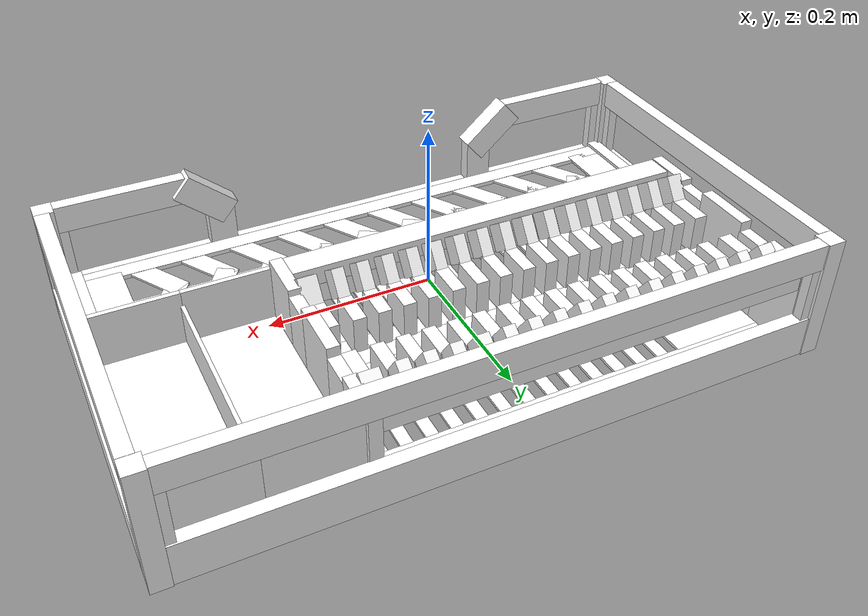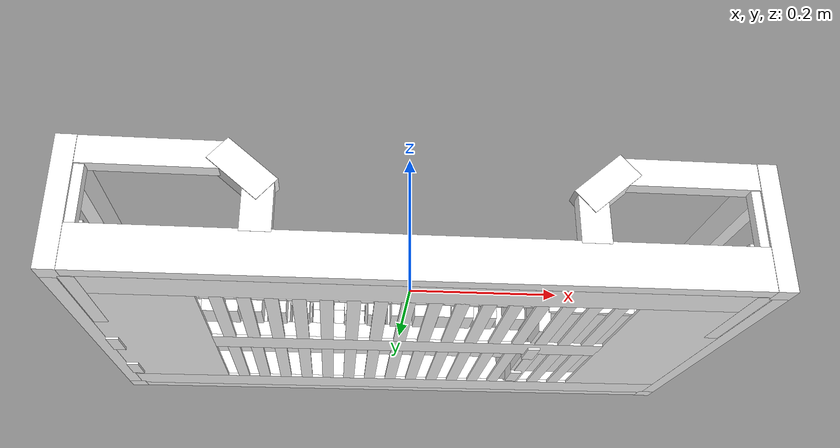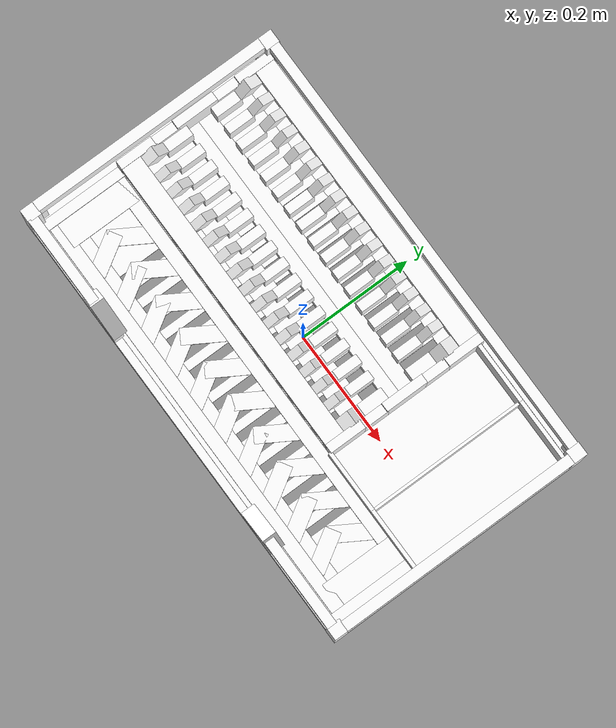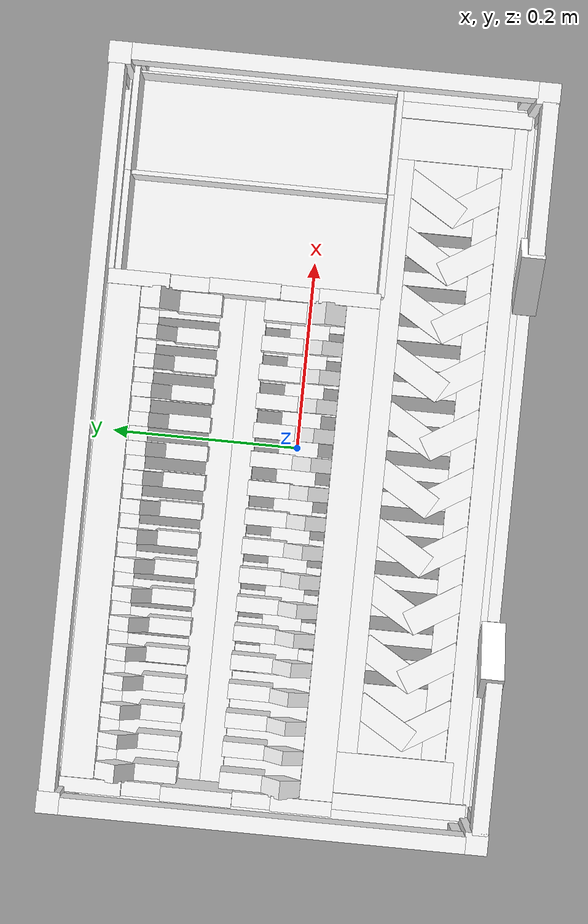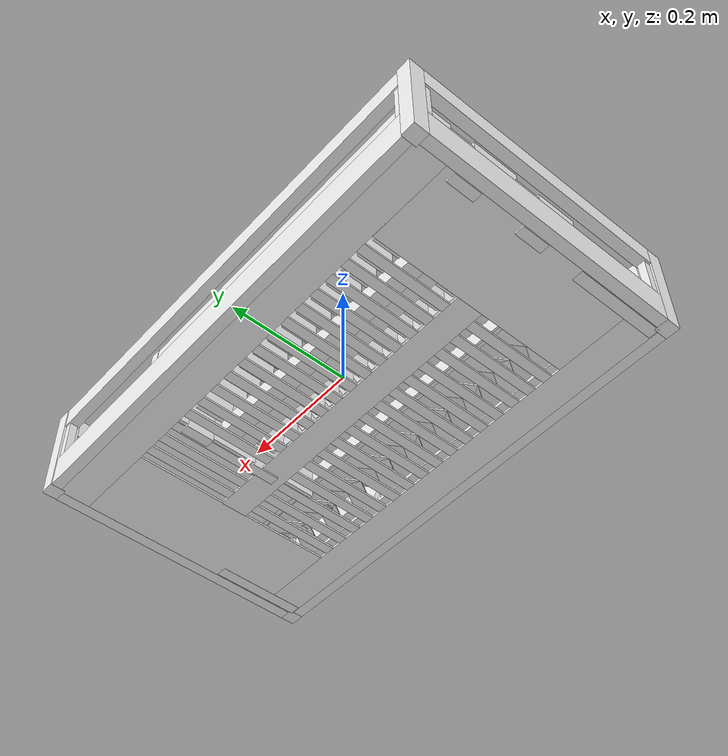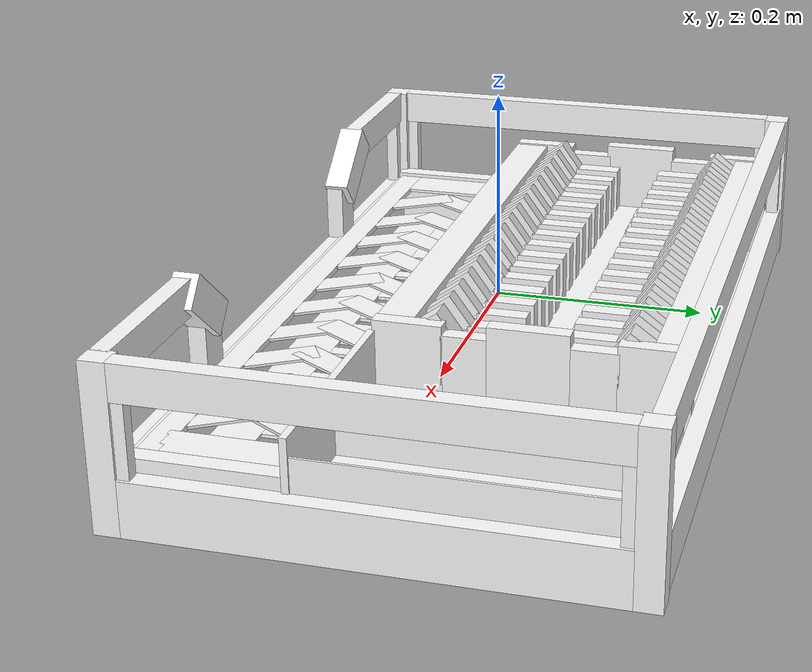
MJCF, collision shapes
<?xml version='1.0' encoding='utf-8'?>
<mujoco model="model">
  <option timestep="0.002" gravity="0.0 0.0 -9.81" />
  <compiler angle="radian" />
  <asset>
    <mesh file="visual/DishRack046.obj" name="DishRack046_vis" />
    <texture file="visual/T_BC001.png" name="DishRack046_material" type="2d" />
    <material name="DishRack046_material" rgba="1 1 1 1.0" texture="DishRack046_material" shininess="0.4472135901451111" specular="0.3103448502657381" />
  </asset>
  <default>
    <default class="visual">
      <geom conaffinity="0" contype="0" group="1" type="mesh" />
    </default>
    <default class="collision">
      <geom group="0" rgba="1 1 1 0.25" density="1.0" solref="0.004 1" solimp="0.998 0.998 0.001" />
    </default>
    <default class="spawn">
      <geom group="0" rgba="1 1 1 0.5" contype="0" conaffinity="0" />
      <site group="0" rgba="1 1 1 0.5" />
    </default>
    <default class="region">
      <geom group="1" conaffinity="0" contype="0" rgba="0 1 0 0" mass="0" />
    </default>
  </default>
  <worldbody>
    <body>
      <body name="object">
        <geom mesh="DishRack046_vis" type="mesh" solimp="0.998 0.998 0.001" solref="0.001 1" friction="0.95 0.3 0.1" class="visual" material="DishRack046_material" />
        <geom type="box" pos="0.39766744 -0.00132023 -0.05192924" size="0.00913156010210514 0.21430644392967224 0.026510488241910934" quat="1.0 0.0 0.0 0.0" class="collision" />
        <geom type="box" pos="0.39509019 0.22486576 0.00086046" size="0.011708796955645084 0.012272845953702927 0.07930018752813339" quat="1.0 0.0 0.0 0.0" class="collision" />
        <geom type="box" pos="0.39764181 0.20716241 0.01032044" size="0.006281320005655289 0.005727356765419245 0.03601858764886856" quat="1.0 0.0 0.0 0.0" class="collision" />
        <geom type="box" pos="0.37779069 0.22716862 0.01032044" size="0.005680048372596502 0.0062696742825210094 0.03601858764886856" quat="1.0 0.0 0.0 0.0" class="collision" />
        <geom type="box" pos="0.39766744 -0.00132023 0.06298769" size="0.00913156010210514 0.21430644392967224 0.01736580766737461" quat="1.0 0.0 0.0 0.0" class="collision" />
        <geom type="box" pos="0.38858098 0.06805242 -0.02095379" size="0.0011926671722903848 0.13945630192756653 0.027811428532004356" quat="1.0 0.0 0.0 0.0" class="collision" />
        <geom type="box" pos="0.16413960 -0.04037047 -0.02097550" size="0.007958175614476204 0.032889191061258316 0.055858682841062546" quat="1.0 0.0 0.0 0.0" class="collision" />
        <geom type="box" pos="0.27962047 0.06805242 -0.02095379" size="0.002443235367536545 0.13945630192756653 0.027811428532004356" quat="1.0 0.0 0.0 0.0" class="collision" />
        <geom type="box" pos="0.37779069 -0.22967133 0.01032044" size="0.005680048372596502 0.0062696742825210094 0.03601858764886856" quat="1.0 0.0 0.0 0.0" class="collision" />
        <geom type="box" pos="0.39764181 -0.20909162 0.01032044" size="0.006281320005655289 0.005727356765419245 0.03601858764886856" quat="1.0 0.0 0.0 0.0" class="collision" />
        <geom type="box" pos="0.39509019 -0.22679498 0.00086046" size="0.011708796955645084 0.012272845953702927 0.07930018752813339" quat="1.0 0.0 0.0 0.0" class="collision" />
        <geom type="box" pos="0.00006485 0.22712360 0.06299322" size="0.3836459517478943 0.008559223264455795 0.01716744154691696" quat="1.0 0.0 0.0 0.0" class="collision" />
        <geom type="box" pos="0.00006486 0.22712360 -0.05162422" size="0.3836459517478943 0.008559223264455795 0.026698756963014603" quat="1.0 0.0 0.0 0.0" class="collision" />
        <geom type="box" pos="0.33551171 0.20992469 -0.01153611" size="0.05589539557695389 0.003372995415702462 0.036185372620821" quat="1.0 0.0 0.0 0.0" class="collision" />
        <geom type="box" pos="0.22474378 0.20992469 -0.01153611" size="0.05500926077365875 0.003372995415702462 0.036185372620821" quat="1.0 0.0 0.0 0.0" class="collision" />
        <geom type="box" pos="0.22474378 -0.07376248 -0.01326757" size="0.05500926077365875 0.003372995415702462 0.03791683912277222" quat="1.0 0.0 0.0 0.0" class="collision" />
        <geom type="box" pos="0.33551171 -0.07376248 -0.01326757" size="0.05589539557695389 0.003372995415702462 0.03791683912277222" quat="1.0 0.0 0.0 0.0" class="collision" />
        <geom type="box" pos="0.27957320 0.06805242 -0.04804103" size="0.10815002769231796 0.13945630192756653 0.0026114964857697487" quat="1.0 0.0 0.0 0.0" class="collision" />
        <geom type="box" pos="0.30291301 -0.22980270 0.06299322" size="0.08324895799160004 0.008559223264455795 0.01716744154691696" quat="1.0 0.0 0.0 0.0" class="collision" />
        <geom type="box" pos="0.18564220 -0.22995785 0.00249696" size="0.017368707805871964 0.008737589232623577 0.030227171257138252" quat="1.0 0.0 0.0 0.0" class="collision" />
        <geom type="box" pos="0.00006486 -0.23007839 -0.05162422" size="0.3836459517478943 0.008559223264455795 0.026698756963014603" quat="1.0 0.0 0.0 0.0" class="collision" />
        <geom type="box" pos="0.16413960 0.18580027 -0.02097550" size="0.007958175614476204 0.03312646225094795 0.055858682841062546" quat="1.0 0.0 0.0 0.0" class="collision" />
        <geom type="box" pos="0.16413960 0.07198905 -0.01885078" size="0.007958175614476204 0.03823047876358032 0.0579833984375" quat="1.0 0.0 0.0 0.0" class="collision" />
        <geom type="box" pos="0.16413960 0.13167353 -0.02735098" size="0.007958175614476204 0.02284993976354599 0.05376123636960983" quat="1.0 0.0 0.0 0.0" class="collision" />
        <geom type="box" pos="0.16413960 0.01418836 -0.02735098" size="0.007958175614476204 0.02284993976354599 0.05376123636960983" quat="1.0 0.0 0.0 0.0" class="collision" />
        <geom type="box" pos="-0.38074043 0.01418836 -0.02735098" size="0.007958175614476204 0.02284993976354599 0.05376123636960983" quat="1.0 0.0 0.0 0.0" class="collision" />
        <geom type="box" pos="-0.38074043 0.13167353 -0.02735098" size="0.007958175614476204 0.02284993976354599 0.05376123636960983" quat="1.0 0.0 0.0 0.0" class="collision" />
        <geom type="box" pos="-0.38074043 0.07198905 -0.01885078" size="0.007958175614476204 0.03823047876358032 0.0579833984375" quat="1.0 0.0 0.0 0.0" class="collision" />
        <geom type="box" pos="-0.38074043 0.18580027 -0.02097550" size="0.007958175614476204 0.03312646225094795 0.055858682841062546" quat="1.0 0.0 0.0 0.0" class="collision" />
        <geom type="box" pos="-0.38074043 -0.04037047 -0.02097550" size="0.007958175614476204 0.032889191061258316 0.055858682841062546" quat="1.0 0.0 0.0 0.0" class="collision" />
        <geom type="box" pos="-0.18567324 -0.22995785 0.00249696" size="0.017368707805871964 0.008737589232623577 0.030227171257138252" quat="1.0 0.0 0.0 0.0" class="collision" />
        <geom type="box" pos="-0.30294403 -0.22980270 0.06299322" size="0.08324895799160004 0.008559223264455795 0.01716744154691696" quat="1.0 0.0 0.0 0.0" class="collision" />
        <geom type="box" pos="-0.39512122 -0.22679498 0.00086046" size="0.011708796955645084 0.012272845953702927 0.07930018752813339" quat="1.0 0.0 0.0 0.0" class="collision" />
        <geom type="box" pos="-0.39767283 -0.20909162 0.01032044" size="0.006281320005655289 0.005727356765419245 0.03601858764886856" quat="1.0 0.0 0.0 0.0" class="collision" />
        <geom type="box" pos="-0.37782174 -0.22967133 0.01032044" size="0.005680048372596502 0.0062696742825210094 0.03601858764886856" quat="1.0 0.0 0.0 0.0" class="collision" />
        <geom type="box" pos="-0.39769846 -0.00132023 0.06298769" size="0.00913156010210514 0.21430644392967224 0.01736580766737461" quat="1.0 0.0 0.0 0.0" class="collision" />
        <geom type="box" pos="-0.37782174 0.22716862 0.01032044" size="0.005680048372596502 0.0062696742825210094 0.03601858764886856" quat="1.0 0.0 0.0 0.0" class="collision" />
        <geom type="box" pos="-0.39767283 0.20716239 0.01032044" size="0.006281320005655289 0.005727356765419245 0.03601858764886856" quat="1.0 0.0 0.0 0.0" class="collision" />
        <geom type="box" pos="-0.39512122 0.22486575 0.00086046" size="0.011708796955645084 0.012272845953702927 0.07930018752813339" quat="1.0 0.0 0.0 0.0" class="collision" />
        <geom type="box" pos="-0.39769846 -0.00132023 -0.05192924" size="0.00913156010210514 0.21430644392967224 0.026510488241910934" quat="1.0 0.0 0.0 0.0" class="collision" />
        <geom type="box" pos="-0.00012003 0.19310814 -0.07656148" size="0.3899889588356018 0.02550456114113331 0.0017614993266761303" quat="1.0 0.0 0.0 0.0" class="collision" />
        <geom type="box" pos="-0.23108068 -0.09681812 -0.07656148" size="0.007906707935035229 0.07402960956096649 0.0017614993266761303" quat="1.0 0.0 0.0 0.0" class="collision" />
        <geom type="box" pos="-0.00012003 -0.19592837 -0.07656148" size="0.3899889588356018 0.02550456114113331 0.0017614993266761303" quat="1.0 0.0 0.0 0.0" class="collision" />
        <geom type="box" pos="0.32044840 -0.00123241 -0.07656148" size="0.06817793101072311 0.16961531341075897 0.0017614993266761303" quat="1.0 0.0 0.0 0.0" class="collision" />
        <geom type="box" pos="-0.00035830 -0.00136638 -0.07656148" size="0.2536192238330841 0.02174975350499153 0.0017614993266761303" quat="1.0 0.0 0.0 0.0" class="collision" />
        <geom type="box" pos="-0.32193109 -0.00123241 -0.07656148" size="0.06817793101072311 0.16961531341075897 0.0017614993266761303" quat="1.0 0.0 0.0 0.0" class="collision" />
        <geom type="box" pos="-0.23108068 0.09409304 -0.07656148" size="0.007906707935035229 0.07402960956096649 0.0017614993266761303" quat="1.0 0.0 0.0 0.0" class="collision" />
        <geom type="box" pos="-0.20077091 0.09409304 -0.07656148" size="0.007906707935035229 0.07402960956096649 0.0017614993266761303" quat="1.0 0.0 0.0 0.0" class="collision" />
        <geom type="box" pos="-0.20077091 -0.09681812 -0.07656148" size="0.007906707935035229 0.07402960956096649 0.0017614993266761303" quat="1.0 0.0 0.0 0.0" class="collision" />
        <geom type="box" pos="-0.13898395 -0.09681812 -0.07656148" size="0.007906707935035229 0.07402960956096649 0.0017614993266761303" quat="1.0 0.0 0.0 0.0" class="collision" />
        <geom type="box" pos="-0.13898395 0.09409304 -0.07656148" size="0.007906707935035229 0.07402960956096649 0.0017614993266761303" quat="1.0 0.0 0.0 0.0" class="collision" />
        <geom type="box" pos="-0.16986404 0.09409304 -0.07656148" size="0.007906707935035229 0.07402960956096649 0.0017614993266761303" quat="1.0 0.0 0.0 0.0" class="collision" />
        <geom type="box" pos="-0.16986404 -0.09681812 -0.07656148" size="0.007906707935035229 0.07402960956096649 0.0017614993266761303" quat="1.0 0.0 0.0 0.0" class="collision" />
        <geom type="box" pos="-0.04667432 -0.09681812 -0.07656148" size="0.007906707935035229 0.07402960956096649 0.0017614993266761303" quat="1.0 0.0 0.0 0.0" class="collision" />
        <geom type="box" pos="-0.04667432 0.09409304 -0.07656148" size="0.007906707935035229 0.07402960956096649 0.0017614993266761303" quat="1.0 0.0 0.0 0.0" class="collision" />
        <geom type="box" pos="-0.01579423 0.09409304 -0.07656148" size="0.007906707935035229 0.07402960956096649 0.0017614993266761303" quat="1.0 0.0 0.0 0.0" class="collision" />
        <geom type="box" pos="-0.01579423 -0.09681812 -0.07656148" size="0.007906707935035229 0.07402960956096649 0.0017614993266761303" quat="1.0 0.0 0.0 0.0" class="collision" />
        <geom type="box" pos="-0.07758119 -0.09681812 -0.07656148" size="0.007906707935035229 0.07402960956096649 0.0017614993266761303" quat="1.0 0.0 0.0 0.0" class="collision" />
        <geom type="box" pos="-0.07758119 0.09409304 -0.07656148" size="0.007906707935035229 0.07402960956096649 0.0017614993266761303" quat="1.0 0.0 0.0 0.0" class="collision" />
        <geom type="box" pos="-0.10825370 0.09409304 -0.07656148" size="0.007906707935035229 0.07402960956096649 0.0017614993266761303" quat="1.0 0.0 0.0 0.0" class="collision" />
        <geom type="box" pos="-0.10825370 -0.09681812 -0.07656148" size="0.007906707935035229 0.07402960956096649 0.0017614993266761303" quat="1.0 0.0 0.0 0.0" class="collision" />
        <geom type="box" pos="0.13852635 -0.09681812 -0.07656148" size="0.007906707935035229 0.07402960956096649 0.0017614993266761303" quat="1.0 0.0 0.0 0.0" class="collision" />
        <geom type="box" pos="0.13852635 0.09409304 -0.07656148" size="0.007906707935035229 0.07402960956096649 0.0017614993266761303" quat="1.0 0.0 0.0 0.0" class="collision" />
        <geom type="box" pos="0.16919887 0.09409304 -0.07656148" size="0.007906707935035229 0.07402960956096649 0.0017614993266761303" quat="1.0 0.0 0.0 0.0" class="collision" />
        <geom type="box" pos="0.16919887 -0.09681812 -0.07656148" size="0.007906707935035229 0.07402960956096649 0.0017614993266761303" quat="1.0 0.0 0.0 0.0" class="collision" />
        <geom type="box" pos="0.23098582 -0.09681812 -0.07656148" size="0.007906707935035229 0.07402960956096649 0.0017614993266761303" quat="1.0 0.0 0.0 0.0" class="collision" />
        <geom type="box" pos="0.23098582 0.09409304 -0.07656148" size="0.007906707935035229 0.07402960956096649 0.0017614993266761303" quat="1.0 0.0 0.0 0.0" class="collision" />
        <geom type="box" pos="0.20010573 0.09409304 -0.07656148" size="0.007906707935035229 0.07402960956096649 0.0017614993266761303" quat="1.0 0.0 0.0 0.0" class="collision" />
        <geom type="box" pos="0.20010573 -0.09681812 -0.07656148" size="0.007906707935035229 0.07402960956096649 0.0017614993266761303" quat="1.0 0.0 0.0 0.0" class="collision" />
        <geom type="box" pos="0.07691602 -0.09681812 -0.07656148" size="0.007906707935035229 0.07402960956096649 0.0017614993266761303" quat="1.0 0.0 0.0 0.0" class="collision" />
        <geom type="box" pos="0.07691602 0.09409304 -0.07656148" size="0.007906707935035229 0.07402960956096649 0.0017614993266761303" quat="1.0 0.0 0.0 0.0" class="collision" />
        <geom type="box" pos="0.10779610 0.09409304 -0.07656148" size="0.007906707935035229 0.07402960956096649 0.0017614993266761303" quat="1.0 0.0 0.0 0.0" class="collision" />
        <geom type="box" pos="0.10779610 -0.09681812 -0.07656148" size="0.007906707935035229 0.07402960956096649 0.0017614993266761303" quat="1.0 0.0 0.0 0.0" class="collision" />
        <geom type="box" pos="0.04600915 -0.09681812 -0.07656148" size="0.007906707935035229 0.07402960956096649 0.0017614993266761303" quat="1.0 0.0 0.0 0.0" class="collision" />
        <geom type="box" pos="0.04600915 0.09409304 -0.07656148" size="0.007906707935035229 0.07402960956096649 0.0017614993266761303" quat="1.0 0.0 0.0 0.0" class="collision" />
        <geom type="box" pos="0.01494745 0.09409304 -0.07656148" size="0.007906707935035229 0.07402960956096649 0.0017614993266761303" quat="1.0 0.0 0.0 0.0" class="collision" />
        <geom type="box" pos="0.01494745 -0.09681812 -0.07656148" size="0.007906707935035229 0.07402960956096649 0.0017614993266761303" quat="1.0 0.0 0.0 0.0" class="collision" />
        <geom type="box" pos="0.00006486 -0.22010523 -0.04966584" size="0.3836459517478943 0.0046408395282924175 0.026883482933044434" quat="1.0 0.0 0.0 0.0" class="collision" />
        <geom type="box" pos="0.00006486 -0.07495962 -0.03236029" size="0.3836459517478943 0.0016088917618617415 0.01343268621712923" quat="1.0 0.0 0.0 0.0" class="collision" />
        <geom type="box" pos="-0.10684270 0.20052567 0.02117980" size="0.26745548844337463 0.017642509192228317 0.01202365756034851" quat="1.0 0.0 0.0 0.0" class="collision" />
        <geom type="box" pos="-0.10684270 -0.05561782 0.02117980" size="0.26745548844337463 0.017642509192228317 0.01202365756034851" quat="1.0 0.0 0.0 0.0" class="collision" />
        <geom type="box" pos="-0.10811607 0.08486954 -0.04686006" size="0.26566722989082336 0.013316071592271328 0.013973788358271122" quat="1.0 0.0 0.0 0.0" class="collision" />
        <geom type="box" pos="-0.10811608 0.06074193 -0.04686006" size="0.26566722989082336 0.013316071592271328 0.013973788358271122" quat="1.0 0.0 0.0 0.0" class="collision" />
        <geom type="box" pos="-0.36456013 0.11966587 -0.01066979" size="0.010107094421982765 0.02407587692141533 0.02503923699259758" quat="1.0 0.0 0.0 0.0" class="collision" />
        <geom type="box" pos="0.10915931 0.11956269 -0.01076770" size="0.008298106491565704 0.023869525641202927 0.024500761181116104" quat="1.0 0.0 0.0 0.0" class="collision" />
        <geom type="box" pos="0.14597756 0.11966587 -0.01066979" size="0.011992357671260834 0.02407587692141533 0.02503923699259758" quat="1.0 0.0 0.0 0.0" class="collision" />
        <geom type="box" pos="0.07808806 0.11956269 -0.01076770" size="0.008298106491565704 0.023869525641202927 0.024500761181116104" quat="1.0 0.0 0.0 0.0" class="collision" />
        <geom type="box" pos="0.01522218 0.11956269 -0.01076770" size="0.008298106491565704 0.023869525641202927 0.024500761181116104" quat="1.0 0.0 0.0 0.0" class="collision" />
        <geom type="box" pos="0.04685302 0.11956269 -0.01076770" size="0.008298106491565704 0.023869525641202927 0.024500761181116104" quat="1.0 0.0 0.0 0.0" class="collision" />
        <geom type="box" pos="-0.07879568 0.11956269 -0.01076770" size="0.008298106491565704 0.023869525641202927 0.024500761181116104" quat="1.0 0.0 0.0 0.0" class="collision" />
        <geom type="box" pos="-0.11042652 0.11956269 -0.01076770" size="0.008298106491565704 0.023869525641202927 0.024500761181116104" quat="1.0 0.0 0.0 0.0" class="collision" />
        <geom type="box" pos="-0.04756064 0.11956269 -0.01076770" size="0.008298106491565704 0.023869525641202927 0.024500761181116104" quat="1.0 0.0 0.0 0.0" class="collision" />
        <geom type="box" pos="-0.01602789 0.11956269 -0.01076770" size="0.008298106491565704 0.023869525641202927 0.024500761181116104" quat="1.0 0.0 0.0 0.0" class="collision" />
        <geom type="box" pos="-0.26716855 0.11956269 -0.01076770" size="0.008298106491565704 0.023869525641202927 0.024500761181116104" quat="1.0 0.0 0.0 0.0" class="collision" />
        <geom type="box" pos="-0.29870132 0.11956269 -0.01076770" size="0.008298106491565704 0.023869525641202927 0.024500761181116104" quat="1.0 0.0 0.0 0.0" class="collision" />
        <geom type="box" pos="-0.32993636 0.11956269 -0.01076770" size="0.008298106491565704 0.023869525641202927 0.024500761181116104" quat="1.0 0.0 0.0 0.0" class="collision" />
        <geom type="box" pos="-0.20460539 0.11956269 -0.01076770" size="0.008298106491565704 0.023869525641202927 0.024500761181116104" quat="1.0 0.0 0.0 0.0" class="collision" />
        <geom type="box" pos="-0.23591848 0.11956269 -0.01076770" size="0.008298106491565704 0.023869525641202927 0.024500761181116104" quat="1.0 0.0 0.0 0.0" class="collision" />
        <geom type="box" pos="-0.17305259 0.11956269 -0.01076770" size="0.008298106491565704 0.023869525641202927 0.024500761181116104" quat="1.0 0.0 0.0 0.0" class="collision" />
        <geom type="box" pos="-0.14198136 0.11956269 -0.01076770" size="0.008298106491565704 0.023869525641202927 0.024500761181116104" quat="1.0 0.0 0.0 0.0" class="collision" />
        <geom type="box" pos="-0.36457321 0.16255515 0.01916975" size="0.010010153986513615 0.01454562321305275 0.017259161919355392" quat="0.9516391158103943 -0.30721816420555115 -0.0 0.0" class="collision" />
        <geom type="box" pos="-0.33039680 0.16255515 0.01916975" size="0.0076707592234015465 0.01454562321305275 0.017259161919355392" quat="0.9516391158103943 -0.30721816420555115 -0.0 0.0" class="collision" />
        <geom type="box" pos="-0.29897898 0.16255515 0.01916975" size="0.0076707592234015465 0.01454562321305275 0.017259161919355392" quat="0.9516391158103943 -0.30721816420555115 -0.0 0.0" class="collision" />
        <geom type="box" pos="0.14624579 0.16255515 0.01916975" size="0.011958356946706772 0.01454562321305275 0.017259161919355392" quat="0.9516391158103943 -0.30721816420555115 -0.0 0.0" class="collision" />
        <geom type="box" pos="-0.23633315 0.16255515 0.01916975" size="0.0076707592234015465 0.01454562321305275 0.017259161919355392" quat="0.9516391158103943 -0.30721816420555115 -0.0 0.0" class="collision" />
        <geom type="box" pos="-0.26775096 0.16255515 0.01916975" size="0.0076707592234015465 0.01454562321305275 0.017259161919355392" quat="0.9516391158103943 -0.30721816420555115 -0.0 0.0" class="collision" />
        <geom type="box" pos="-0.14212994 0.16255515 0.01916975" size="0.0076707592234015465 0.01454562321305275 0.017259161919355392" quat="0.9516391158103943 -0.30721816420555115 -0.0 0.0" class="collision" />
        <geom type="box" pos="-0.11071213 0.16255515 0.01916975" size="0.0076707592234015465 0.01454562321305275 0.017259161919355392" quat="0.9516391158103943 -0.30721816420555115 -0.0 0.0" class="collision" />
        <geom type="box" pos="-0.17344168 0.16255515 0.01916975" size="0.0076707592234015465 0.01454562321305275 0.017259161919355392" quat="0.9516391158103943 -0.30721816420555115 -0.0 0.0" class="collision" />
        <geom type="box" pos="-0.20485950 0.16255515 0.01916975" size="0.0076707592234015465 0.01454562321305275 0.017259161919355392" quat="0.9516391158103943 -0.30721816420555115 -0.0 0.0" class="collision" />
        <geom type="box" pos="0.04634394 0.16255515 0.01916975" size="0.0076707592234015465 0.01454562321305275 0.017259161919355392" quat="0.9516391158103943 -0.30721816420555115 -0.0 0.0" class="collision" />
        <geom type="box" pos="0.07776176 0.16255515 0.01916975" size="0.0076707592234015465 0.01454562321305275 0.017259161919355392" quat="0.9516391158103943 -0.30721816420555115 -0.0 0.0" class="collision" />
        <geom type="box" pos="0.10907349 0.16255515 0.01916975" size="0.0076707592234015465 0.01454562321305275 0.017259161919355392" quat="0.9516391158103943 -0.30721816420555115 -0.0 0.0" class="collision" />
        <geom type="box" pos="-0.01654753 0.16255515 0.01916975" size="0.0076707592234015465 0.01454562321305275 0.017259161919355392" quat="0.9516391158103943 -0.30721816420555115 -0.0 0.0" class="collision" />
        <geom type="box" pos="0.01487029 0.16255515 0.01916975" size="0.0076707592234015465 0.01454562321305275 0.017259161919355392" quat="0.9516391158103943 -0.30721816420555115 -0.0 0.0" class="collision" />
        <geom type="box" pos="-0.04777553 0.16255515 0.01916975" size="0.0076707592234015465 0.01454562321305275 0.017259161919355392" quat="0.9516391158103943 -0.30721816420555115 -0.0 0.0" class="collision" />
        <geom type="box" pos="-0.07919335 0.16255515 0.01916975" size="0.0076707592234015465 0.01454562321305275 0.017259161919355392" quat="0.9516391158103943 -0.30721816420555115 -0.0 0.0" class="collision" />
        <geom type="box" pos="-0.07919335 -0.01764926 0.01916975" size="0.0076707592234015465 0.01454562321305275 0.017259161919355392" quat="0.9516391158103943 0.30721816420555115 0.0 0.0" class="collision" />
        <geom type="box" pos="-0.04777553 -0.01764926 0.01916975" size="0.0076707592234015465 0.01454562321305275 0.017259161919355392" quat="0.9516391158103943 0.30721816420555115 0.0 0.0" class="collision" />
        <geom type="box" pos="0.01487029 -0.01764926 0.01916975" size="0.0076707592234015465 0.01454562321305275 0.017259161919355392" quat="0.9516391158103943 0.30721816420555115 0.0 0.0" class="collision" />
        <geom type="box" pos="-0.01654753 -0.01764926 0.01916975" size="0.0076707592234015465 0.01454562321305275 0.017259161919355392" quat="0.9516391158103943 0.30721816420555115 0.0 0.0" class="collision" />
        <geom type="box" pos="0.10907347 -0.01764926 0.01916975" size="0.0076707592234015465 0.01454562321305275 0.017259161919355392" quat="0.9516391158103943 0.30721816420555115 0.0 0.0" class="collision" />
        <geom type="box" pos="0.07776176 -0.01764926 0.01916975" size="0.0076707592234015465 0.01454562321305275 0.017259161919355392" quat="0.9516391158103943 0.30721816420555115 0.0 0.0" class="collision" />
        <geom type="box" pos="0.04634394 -0.01764926 0.01916975" size="0.0076707592234015465 0.01454562321305275 0.017259161919355392" quat="0.9516391158103943 0.30721816420555115 0.0 0.0" class="collision" />
        <geom type="box" pos="-0.20485950 -0.01764926 0.01916975" size="0.0076707592234015465 0.01454562321305275 0.017259161919355392" quat="0.9516391158103943 0.30721816420555115 0.0 0.0" class="collision" />
        <geom type="box" pos="-0.17344168 -0.01764926 0.01916975" size="0.0076707592234015465 0.01454562321305275 0.017259161919355392" quat="0.9516391158103943 0.30721816420555115 0.0 0.0" class="collision" />
        <geom type="box" pos="-0.11071213 -0.01764926 0.01916975" size="0.0076707592234015465 0.01454562321305275 0.017259161919355392" quat="0.9516391158103943 0.30721816420555115 0.0 0.0" class="collision" />
        <geom type="box" pos="-0.14212994 -0.01764926 0.01916975" size="0.0076707592234015465 0.01454562321305275 0.017259161919355392" quat="0.9516391158103943 0.30721816420555115 0.0 0.0" class="collision" />
        <geom type="box" pos="-0.26775096 -0.01764926 0.01916975" size="0.0076707592234015465 0.01454562321305275 0.017259161919355392" quat="0.9516391158103943 0.30721816420555115 0.0 0.0" class="collision" />
        <geom type="box" pos="-0.23633315 -0.01764926 0.01916975" size="0.0076707592234015465 0.01454562321305275 0.017259161919355392" quat="0.9516391158103943 0.30721816420555115 0.0 0.0" class="collision" />
        <geom type="box" pos="0.14624579 -0.01764926 0.01916975" size="0.011958356946706772 0.01454562321305275 0.017259161919355392" quat="0.9516391158103943 0.30721816420555115 0.0 0.0" class="collision" />
        <geom type="box" pos="-0.29897898 -0.01764926 0.01916975" size="0.0076707592234015465 0.01454562321305275 0.017259161919355392" quat="0.9516391158103943 0.30721816420555115 0.0 0.0" class="collision" />
        <geom type="box" pos="-0.33039680 -0.01764926 0.01916975" size="0.0076707592234015465 0.01454562321305275 0.017259161919355392" quat="0.9516391158103943 0.30721816420555115 0.0 0.0" class="collision" />
        <geom type="box" pos="-0.14198136 0.02534320 -0.01076770" size="0.008298106491565704 0.023869525641202927 0.024500761181116104" quat="1.0 0.0 0.0 0.0" class="collision" />
        <geom type="box" pos="-0.17305259 0.02534321 -0.01076770" size="0.008298106491565704 0.023869525641202927 0.024500761181116104" quat="1.0 0.0 0.0 0.0" class="collision" />
        <geom type="box" pos="-0.23591848 0.02534321 -0.01076770" size="0.008298106491565704 0.023869525641202927 0.024500761181116104" quat="1.0 0.0 0.0 0.0" class="collision" />
        <geom type="box" pos="-0.20460539 0.02534320 -0.01076770" size="0.008298106491565704 0.023869525641202927 0.024500761181116104" quat="1.0 0.0 0.0 0.0" class="collision" />
        <geom type="box" pos="-0.32993636 0.02534320 -0.01076770" size="0.008298106491565704 0.023869525641202927 0.024500761181116104" quat="1.0 0.0 0.0 0.0" class="collision" />
        <geom type="box" pos="-0.36457321 -0.01764926 0.01916975" size="0.010010153986513615 0.01454562321305275 0.017259161919355392" quat="0.9516391158103943 0.30721816420555115 0.0 0.0" class="collision" />
        <geom type="box" pos="-0.29870132 0.02534321 -0.01076770" size="0.008298106491565704 0.023869525641202927 0.024500761181116104" quat="1.0 0.0 0.0 0.0" class="collision" />
        <geom type="box" pos="-0.26716857 0.02534320 -0.01076770" size="0.008298106491565704 0.023869525641202927 0.024500761181116104" quat="1.0 0.0 0.0 0.0" class="collision" />
        <geom type="box" pos="-0.01602788 0.02534320 -0.01076770" size="0.008298106491565704 0.023869525641202927 0.024500761181116104" quat="1.0 0.0 0.0 0.0" class="collision" />
        <geom type="box" pos="-0.04756064 0.02534321 -0.01076770" size="0.008298106491565704 0.023869525641202927 0.024500761181116104" quat="1.0 0.0 0.0 0.0" class="collision" />
        <geom type="box" pos="-0.11042652 0.02534321 -0.01076770" size="0.008298106491565704 0.023869525641202927 0.024500761181116104" quat="1.0 0.0 0.0 0.0" class="collision" />
        <geom type="box" pos="-0.07879568 0.02534320 -0.01076770" size="0.008298106491565704 0.023869525641202927 0.024500761181116104" quat="1.0 0.0 0.0 0.0" class="collision" />
        <geom type="box" pos="0.04685302 0.02534320 -0.01076770" size="0.008298106491565704 0.023869525641202927 0.024500761181116104" quat="1.0 0.0 0.0 0.0" class="collision" />
        <geom type="box" pos="0.01522217 0.02534321 -0.01076770" size="0.008298106491565704 0.023869525641202927 0.024500761181116104" quat="1.0 0.0 0.0 0.0" class="collision" />
        <geom type="box" pos="0.07808805 0.02534321 -0.01076770" size="0.008298106491565704 0.023869525641202927 0.024500761181116104" quat="1.0 0.0 0.0 0.0" class="collision" />
        <geom type="box" pos="0.14597756 0.02524003 -0.01066979" size="0.011992357671260834 0.02407587692141533 0.02503923699259758" quat="1.0 0.0 0.0 0.0" class="collision" />
        <geom type="box" pos="0.10915931 0.02534320 -0.01076770" size="0.008298106491565704 0.023869525641202927 0.024500761181116104" quat="1.0 0.0 0.0 0.0" class="collision" />
        <geom type="box" pos="-0.36456013 0.02524003 -0.01066979" size="0.010107094421982765 0.02407587692141533 0.02503923699259758" quat="1.0 0.0 0.0 0.0" class="collision" />
        <geom type="box" pos="0.37799358 -0.14574674 -0.04594638" size="0.0089478874579072 0.07448946684598923 0.03249334916472435" quat="1.0 0.0 0.0 0.0" class="collision" />
        <geom type="box" pos="0.34726745 -0.13960092 -0.01896802" size="0.0227119829505682 0.06314960867166519 0.0015007279580458999" quat="1.0 0.0 0.0 0.0" class="collision" />
        <geom type="box" pos="-0.34775323 -0.13832386 -0.01896802" size="0.0227119829505682 0.06442667543888092 0.0015007279580458999" quat="1.0 0.0 0.0 0.0" class="collision" />
        <geom type="box" pos="-0.37847936 -0.14574674 -0.04594638" size="0.0089478874579072 0.07448946684598923 0.03249334916472435" quat="1.0 0.0 0.0 0.0" class="collision" />
        <geom type="box" pos="0.00011771 -0.20505028 -0.02026434" size="0.36986175179481506 0.011732377111911774 0.0027970511000603437" quat="1.0 0.0 0.0 0.0" class="collision" />
        <geom type="box" pos="-0.02224364 -0.08537008 -0.02026434" size="0.34750044345855713 0.01145933661609888 0.0027970511000603437" quat="1.0 0.0 0.0 0.0" class="collision" />
        <geom type="box" pos="0.28457537 -0.12174324 -0.01907535" size="0.03562215343117714 0.013668246567249298 0.0013047902612015605" quat="0.8721259236335754 0.0 0.0 0.48928147554397583" class="collision" />
        <geom type="box" pos="0.28458473 -0.16867484 -0.01907535" size="0.03562215715646744 0.013668246567249298 0.0013047902612015605" quat="0.8721259236335754 0.0 -0.0 -0.48928147554397583" class="collision" />
        <geom type="box" pos="0.22184750 -0.16867484 -0.01907535" size="0.03562215715646744 0.013668246567249298 0.0013047902612015605" quat="0.8721259236335754 0.0 -0.0 -0.48928147554397583" class="collision" />
        <geom type="box" pos="0.22183815 -0.12174324 -0.01907535" size="0.03562215343117714 0.013668246567249298 0.0013047902612015605" quat="0.8721259236335754 0.0 0.0 0.48928147554397583" class="collision" />
        <geom type="box" pos="0.09408280 -0.12080464 -0.01907535" size="0.03562215343117714 0.013668246567249298 0.0013047902612015605" quat="0.8721259236335754 0.0 0.0 0.48928147554397583" class="collision" />
        <geom type="box" pos="0.09490351 -0.16911793 -0.01907535" size="0.03562215715646744 0.013668246567249298 0.0013047902612015605" quat="0.8721259236335754 0.0 -0.0 -0.48928147554397583" class="collision" />
        <geom type="box" pos="0.15836625 -0.16867484 -0.01907535" size="0.03562215715646744 0.013668246567249298 0.0013047902612015605" quat="0.8721259236335754 0.0 -0.0 -0.48928147554397583" class="collision" />
        <geom type="box" pos="0.15835689 -0.12174324 -0.01907535" size="0.03562215343117714 0.013668246567249298 0.0013047902612015605" quat="0.8721259236335754 0.0 0.0 0.48928147554397583" class="collision" />
        <geom type="box" pos="-0.09725907 -0.12174324 -0.01907535" size="0.03562215343117714 0.013668246567249298 0.0013047902612015605" quat="0.8721259236335754 0.0 0.0 0.48928147554397583" class="collision" />
        <geom type="box" pos="-0.09724972 -0.16867484 -0.01907535" size="0.03562215715646744 0.013668246567249298 0.0013047902612015605" quat="0.8721259236335754 0.0 -0.0 -0.48928147554397583" class="collision" />
        <geom type="box" pos="-0.16065653 -0.16867484 -0.01907535" size="0.03562215715646744 0.013668246567249298 0.0013047902612015605" quat="0.8721259236335754 0.0 -0.0 -0.48928147554397583" class="collision" />
        <geom type="box" pos="-0.16066588 -0.12174324 -0.01907535" size="0.03562215343117714 0.013668246567249298 0.0013047902612015605" quat="0.8721259236335754 0.0 0.0 0.48928147554397583" class="collision" />
        <geom type="box" pos="-0.03298131 -0.12174324 -0.01907535" size="0.03562215343117714 0.013668246567249298 0.0013047902612015605" quat="0.8721259236335754 0.0 0.0 0.48928147554397583" class="collision" />
        <geom type="box" pos="-0.03297195 -0.16867484 -0.01907535" size="0.03562215715646744 0.013668246567249298 0.0013047902612015605" quat="0.8721259236335754 0.0 -0.0 -0.48928147554397583" class="collision" />
        <geom type="box" pos="0.03033382 -0.16867484 -0.01907535" size="0.03562215715646744 0.013668246567249298 0.0013047902612015605" quat="0.8721259236335754 0.0 -0.0 -0.48928147554397583" class="collision" />
        <geom type="box" pos="0.03032446 -0.12174324 -0.01907535" size="0.03562215343117714 0.013668246567249298 0.0013047902612015605" quat="0.8721259236335754 0.0 0.0 0.48928147554397583" class="collision" />
        <geom type="box" pos="-0.28830409 -0.12174324 -0.01907535" size="0.03562215343117714 0.013668246567249298 0.0013047902612015605" quat="0.8721259236335754 0.0 0.0 0.48928147554397583" class="collision" />
        <geom type="box" pos="-0.28829473 -0.16867484 -0.01907535" size="0.03562215715646744 0.013668246567249298 0.0013047902612015605" quat="0.8721259236335754 0.0 -0.0 -0.48928147554397583" class="collision" />
        <geom type="box" pos="-0.22488797 -0.16867484 -0.01907535" size="0.03562215715646744 0.013668246567249298 0.0013047902612015605" quat="0.8721259236335754 0.0 -0.0 -0.48928147554397583" class="collision" />
        <geom type="box" pos="-0.22489733 -0.12174324 -0.01907535" size="0.03562215343117714 0.013668246567249298 0.0013047902612015605" quat="0.8721259236335754 0.0 0.0 0.48928147554397583" class="collision" />
        <geom type="box" pos="0.20419544 -0.22679498 0.04691139" size="0.017170758917927742 0.012602480128407478 0.03758430480957031" quat="0.9083128571510315 0.0 0.41829144954681396 0.0" class="collision" />
        <geom type="box" pos="-0.20434925 -0.22679498 0.04691140" size="0.01717076078057289 0.012602480128407478 0.03758430853486061" quat="0.9083129167556763 0.0 -0.4182913899421692 0.0" class="collision" />
        <geom class="region" name="reg_int_1" type="box" pos="-0.10839677 0.07155523 0.130429825" size="0.26421532999999997 0.06798367999999999 0.115778875" />
        <geom class="region" name="reg_int_0" type="box" pos="0.0003818849999999985 -0.14556249 0.116270815" size="0.386891435 0.06837403 0.129937885" />
        <geom size="0.4099821 0.24208467 0.08199642" pos="0.0 0.0 -0.0" name="reg_bbox" class="region" type="box" quat="1.0 0.0 0.0 0.0" />
        </body>
    </body>
  </worldbody>
  <actuator />
</mujoco>
